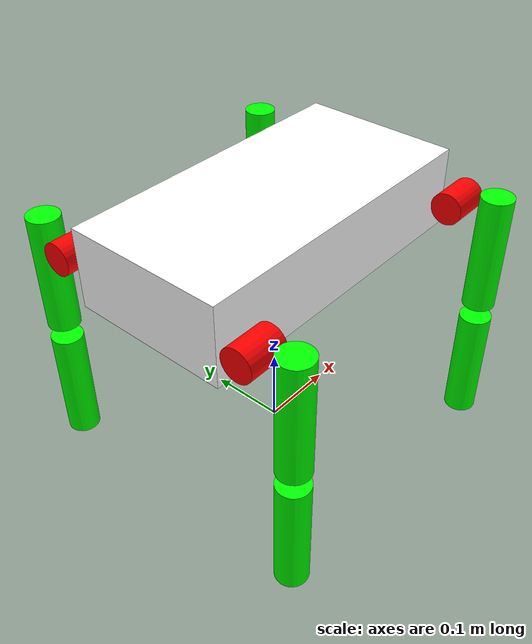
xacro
<?xml version="1.0" ?>
<robot name="quad_robot" xmlns:xacro="http://ros.org/wiki/xacro">

  <!-- Define materials -->
  <xacro:include filename="$(find quad_robot)/description/colors.xacro"/>

  <!-- Define properties -->
  <xacro:include filename="$(find quad_robot)/description/value.xacro"/>

  <!-- Body link -->
  <link name="body_link">
    <visual>
      <origin xyz="0 0 0.3" rpy="0 0 0"/>
      <geometry>
        <box size="${body_length} ${body_width} ${body_height}"/>
      </geometry>
      <xacro:insert_block name="black_material"/>
    </visual>
    <collision>
      <geometry>
        <box size="${body_length} ${body_width} ${body_height}"/>
      </geometry>
      <origin xyz="0 0 0.3" rpy="0 0 0"/>
    </collision>
    <inertial>
      <mass value="2"/>
      <inertia ixx="100" ixy="0" ixz="0" iyy="100" iyz="0" izz="100"/>
    </inertial>
  </link>

  <!-- Shoulder links -->
  <xacro:include filename="$(find quad_robot)/description/shoulder_link.xacro"/>

  <!-- Shoulder joints -->
  <xacro:include filename="$(find quad_robot)/description/shoulder_joint.xacro"/>

  <!-- Leg links -->
  <xacro:include filename="$(find quad_robot)/description/leg_link.xacro"/>

  <!-- Leg joints -->
  <xacro:include filename="$(find quad_robot)/description/leg_joint.xacro"/>

  <!-- Foot links -->
  <xacro:include filename="$(find quad_robot)/description/foot_link.xacro"/>

  <!-- Foot joints -->
  <xacro:include filename="$(find quad_robot)/description/foot_joint.xacro"/>

  <xacro:LF_shoulder_joint name="LF_shoulder_joint" parent="body_link" child="LF_shoulder_link"/>
  <xacro:RF_shoulder_joint name="RF_shoulder_joint" parent="body_link" child="RF_shoulder_link"/>
  <xacro:LR_shoulder_joint name="LR_shoulder_joint" parent="body_link" child="LR_shoulder_link"/>
  <xacro:RR_shoulder_joint name="RR_shoulder_joint" parent="body_link" child="RR_shoulder_link"/>

  <xacro:LF_leg_joint name="LF_leg_joint" parent="LF_shoulder_link" child="LF_leg_link"/>
  <xacro:RF_leg_joint name="RF_leg_joint" parent="RF_shoulder_link" child="RF_leg_link"/>
  <xacro:LR_leg_joint name="LR_leg_joint" parent="LR_shoulder_link" child="LR_leg_link"/>
  <xacro:RR_leg_joint name="RR_leg_joint" parent="RR_shoulder_link" child="RR_leg_link"/>

  <xacro:LF_foot_joint name="LF_foot_joint" parent="LF_leg_link" child="LF_foot_link"/>
  <xacro:RF_foot_joint name="RF_foot_joint" parent="RF_leg_link" child="RF_foot_link"/>
  <xacro:LR_foot_joint name="LR_foot_joint" parent="LR_leg_link" child="LR_foot_link"/>
  <xacro:RR_foot_joint name="RR_foot_joint" parent="RR_leg_link" child="RR_foot_link"/>

</robot>

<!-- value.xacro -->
<robot xmlns:xacro="http://www.ros.org/wiki/xacro">

  <xacro:property name="shoulder_radius" value="0.02"/>
  <xacro:property name="shoulder_length" value="0.05"/>
  <xacro:property name="leg_radius" value="0.02"/>
  <xacro:property name="leg_length" value="0.15"/>
  <xacro:property name="body_length" value="0.4"/>
  <xacro:property name="body_width" value="0.2"/>
  <xacro:property name="body_height" value="0.1"/>

</robot>

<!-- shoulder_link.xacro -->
<robot xmlns:xacro="http://www.ros.org/wiki/xacro">

  <link name="LF_shoulder_link">
    <visual>
      <origin xyz="0 0 0" rpy="0 0 0"/>
      <geometry>
        <cylinder radius="${shoulder_radius}" length="${shoulder_length}"/>
      </geometry>
      <xacro:insert_block name="red_material"/>
    </visual>
    <collision>
      <origin xyz="0 0 0" rpy="0 0 0"/>
      <geometry>
        <cylinder radius="${shoulder_radius}" length="${shoulder_length}"/>
      </geometry>
    </collision>
    <inertial>
      <mass value="0.1"/>
      <inertia ixx="100" ixy="0" ixz="0" iyx="0" iyy="100" iyz="0" izz="100"/>
    </inertial>
  </link>
  <link name="RF_shoulder_link">
    <visual>
      <origin xyz="0 0 0" rpy="0 0 0"/>
      <geometry>
        <cylinder radius="${shoulder_radius}" length="${shoulder_length}"/>
      </geometry>
      <xacro:insert_block name="red_material"/>
    </visual>
    <collision>
      <origin xyz="0 0 0" rpy="0 0 0"/>
      <geometry>
        <cylinder radius="${shoulder_radius}" length="${shoulder_length}"/>
      </geometry>
    </collision>
    <inertial>
      <mass value="0.1"/>
      <inertia ixx="100" ixy="0" ixz="0" iyx="0" iyy="100" iyz="0" izz="100"/>
    </inertial>
  </link>
  <link name="LR_shoulder_link">
    <visual>
      <origin xyz="0 0 0" rpy="0 0 0"/>
      <geometry>
        <cylinder radius="${shoulder_radius}" length="${shoulder_length}"/>
      </geometry>
      <xacro:insert_block name="red_material"/>
    </visual>
    <collision>
      <origin xyz="0 0 0" rpy="0 0 0"/>
      <geometry>
        <cylinder radius="${shoulder_radius}" length="${shoulder_length}"/>
      </geometry>
    </collision>
    <inertial>
      <mass value="0.1"/>
      <inertia ixx="100" ixy="0" ixz="0" iyx="0" iyy="100" iyz="0" izz="100"/>
    </inertial>
  </link>
  <link name="RR_shoulder_link">
    <visual>
      <origin xyz="0 0 0" rpy="0 0 0"/>
      <geometry>
        <cylinder radius="${shoulder_radius}" length="${shoulder_length}"/>
      </geometry>
      <xacro:insert_block name="red_material"/>
    </visual>
    <collision>
      <origin xyz="0 0 0" rpy="0 0 0"/>
      <geometry>
        <cylinder radius="${shoulder_radius}" length="${shoulder_length}"/>
      </geometry>
    </collision>
    <inertial>
      <mass value="0.1"/>
      <inertia ixx="100" ixy="0" ixz="0" iyx="0" iyy="100" iyz="0" izz="100"/>
    </inertial>
  </link>

</robot>

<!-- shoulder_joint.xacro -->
<robot xmlns:xacro="http://www.ros.org/wiki/xacro">

<xacro:property name="shoulder_joint_origin1" value="${body_length/2-0.02} ${body_width/2+0.03} 0.3"/>
  <xacro:property name="shoulder_joint_origin2" value="${body_length/2-0.02} -${body_width/2+0.03} 0.3"/>
  <xacro:property name="shoulder_joint_origin3" value="-${body_length/2-0.02} ${body_width/2+0.03} 0.3"/>
  <xacro:property name="shoulder_joint_origin4" value="-${body_length/2-0.02} -${body_width/2+0.03} 0.3"/>
  <xacro:property name="shoulder_joint_axis" value="0 0 1"/>

  <xacro:macro name="LF_shoulder_joint" params="name parent child">
    <joint name="${name}" type="revolute">
      <origin xyz="${shoulder_joint_origin1}" rpy="0 1.57 0"/>
      <parent link="${parent}"/>
      <child link="${child}"/>
      <axis xyz="${shoulder_joint_axis}"/>
      <limit lower="-1.5708" upper="1.5708" effort="30" velocity="1"/>
    </joint>
  </xacro:macro>

  <xacro:macro name="RF_shoulder_joint" params="name parent child">
    <joint name="${name}" type="revolute">
      <origin xyz="${shoulder_joint_origin2}" rpy="0 1.57 0"/>
      <parent link="${parent}"/>
      <child link="${child}"/>
      <axis xyz="${shoulder_joint_axis}"/>
      <limit lower="-1.5708" upper="1.5708" effort="30" velocity="1"/>
    </joint>
  </xacro:macro>

  <xacro:macro name="LR_shoulder_joint" params="name parent child">
    <joint name="${name}" type="revolute">
      <origin xyz="${shoulder_joint_origin3}" rpy="0 1.57 0"/>
      <parent link="${parent}"/>
      <child link="${child}"/>
      <axis xyz="${shoulder_joint_axis}"/>
      <limit lower="-1.5708" upper="1.5708" effort="30" velocity="1"/>
    </joint>
  </xacro:macro>

  <xacro:macro name="RR_shoulder_joint" params="name parent child">
    <joint name="${name}" type="revolute">
      <origin xyz="${shoulder_joint_origin4}" rpy="0 1.57 0"/>
      <parent link="${parent}"/>
      <child link="${child}"/>
      <axis xyz="${shoulder_joint_axis}"/>
      <limit lower="-1.5708" upper="1.5708" effort="30" velocity="1"/>
    </joint>
  </xacro:macro>

</robot>

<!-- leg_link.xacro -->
<robot xmlns:xacro="http://www.ros.org/wiki/xacro">

  <link name="LF_leg_link">
    <visual>
      <origin xyz="0.05 0 0" rpy="0 1.57 0"/>
      <geometry>
        <cylinder radius="${leg_radius}" length="${leg_length}"/>
      </geometry>
      <xacro:insert_block name="green_material"/>
    </visual>
    <collision>
      <origin xyz="0.05 0 0" rpy="0 1.57 0"/>
      <geometry>
        <cylinder radius="${leg_radius}" length="${leg_length}"/>
      </geometry>
    </collision>
    <inertial>
      <mass value="0.1"/>
      <inertia ixx="100" ixy="0" ixz="0" iyx="0" iyy="100" iyz="0" izz="100"/>
    </inertial>
  </link>
  <link name="RF_leg_link">
    <visual>
      <origin xyz="0.05 0 0" rpy="0 1.57 0"/>
      <geometry>
        <cylinder radius="${leg_radius}" length="${leg_length}"/>
      </geometry>
      <xacro:insert_block name="green_material"/>
    </visual>
    <collision>
      <origin xyz="0.05 0 0" rpy="0 1.57 0"/>
      <geometry>
        <cylinder radius="${leg_radius}" length="${leg_length}"/>
      </geometry>
    </collision>
    <inertial>
      <mass value="0.1"/>
      <inertia ixx="100" ixy="0" ixz="0" iyx="0" iyy="100" iyz="0" izz="100"/>
    </inertial>
  </link>
  <link name="LR_leg_link">
    <visual>
      <origin xyz="0.05 0 0" rpy="0 1.57 0"/>
      <geometry>
        <cylinder radius="${leg_radius}" length="${leg_length}"/>
      </geometry>
      <xacro:insert_block name="green_material"/>
    </visual>
    <collision>
      <origin xyz="0.05 0 0" rpy="0 1.57 0"/>
      <geometry>
        <cylinder radius="${leg_radius}" length="${leg_length}"/>
      </geometry>
    </collision>
    <inertial>
      <mass value="0.1"/>
      <inertia ixx="100" ixy="0" ixz="0" iyx="0" iyy="100" iyz="0" izz="100"/>
    </inertial>
  </link>
  <link name="RR_leg_link">
    <visual>
      <origin xyz="0.05 0 0" rpy="0 1.57 0"/>
      <geometry>
        <cylinder radius="${leg_radius}" length="${leg_length}"/>
      </geometry>
      <xacro:insert_block name="green_material"/>
    </visual>
    <collision>
      <origin xyz="0.05 0 0" rpy="0 1.57 0"/>
      <geometry>
        <cylinder radius="${leg_radius}" length="${leg_length}"/>
      </geometry>
    </collision>
    <inertial>
      <mass value="0.1"/>
      <inertia ixx="100" ixy="0" ixz="0" iyx="0" iyy="100" iyz="0" izz="100"/>
    </inertial>
  </link>

</robot>

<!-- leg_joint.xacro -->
<robot xmlns:xacro="http://www.ros.org/wiki/xacro">

  <xacro:property name="leg_joint_origin1" value="0 0.05 0"/>
  <xacro:property name="leg_joint_origin2" value="0 -0.05 0"/>
  <xacro:property name="leg_joint_origin3" value="0 0.05 0"/>
  <xacro:property name="leg_joint_origin4" value="0 -0.05 0"/>
  <xacro:property name="leg_joint_axis" value="0 0 1"/>

  <xacro:macro name="LF_leg_joint" params="name parent child">
    <joint name="${name}" type="revolute">
      <origin xyz="${leg_joint_origin1}" rpy="1.57 0 0"/>
      <parent link="${parent}"/>
      <child link="${child}"/>
      <axis xyz="${leg_joint_axis}"/>
      <limit lower="-1.5708" upper="1.5708" effort="30" velocity="1"/>
    </joint>
  </xacro:macro>

  <xacro:macro name="RF_leg_joint" params="name parent child">
    <joint name="${name}" type="revolute">
      <origin xyz="${leg_joint_origin2}" rpy="1.57 0 0"/>
      <parent link="${parent}"/>
      <child link="${child}"/>
      <axis xyz="${leg_joint_axis}"/>
      <limit lower="-1.5708" upper="1.5708" effort="30" velocity="1"/>
    </joint>
  </xacro:macro>

  <xacro:macro name="LR_leg_joint" params="name parent child">
    <joint name="${name}" type="revolute">
      <origin xyz="${leg_joint_origin3}" rpy="1.57 0 0"/>
      <parent link="${parent}"/>
      <child link="${child}"/>
      <axis xyz="${leg_joint_axis}"/>
      <limit lower="-1.5708" upper="1.5708" effort="30" velocity="1"/>
    </joint>
  </xacro:macro>

  <xacro:macro name="RR_leg_joint" params="name parent child">
    <joint name="${name}" type="revolute">
      <origin xyz="${leg_joint_origin4}" rpy="1.57 0 0"/>
      <parent link="${parent}"/>
      <child link="${child}"/>
      <axis xyz="${leg_joint_axis}"/>
      <limit lower="-1.5708" upper="1.5708" effort="30" velocity="1"/>
    </joint>
  </xacro:macro>

</robot>

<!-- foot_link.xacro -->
<robot xmlns:xacro="http://www.ros.org/wiki/xacro">

  <link name="LF_foot_link">
    <visual>
      <origin xyz="0.05 0 0" rpy="0 1.57 0"/>
      <geometry>
        <cylinder radius="${leg_radius}" length="${leg_length}"/>
      </geometry>
      <xacro:insert_block name="green_material"/>
    </visual>
    <collision>
      <origin xyz="0.05 0 0" rpy="0 1.57 0"/>
      <geometry>
        <cylinder radius="${leg_radius}" length="${leg_length}"/>
      </geometry>
    </collision>
    <inertial>
      <mass value="0.1"/>
      <inertia ixx="100" ixy="0" ixz="0" iyx="0" iyy="100" iyz="0" izz="100"/>
    </inertial>
  </link>
  <gazebo reference="LF_foot_link">
    <material>Gazebo/Green</material>
    <mu1 value="0.001"/>
    <mu2 value="0.001"/>
  </gazebo>
  <link name="RF_foot_link">
    <visual>
      <origin xyz="0.05 0 0" rpy="0 1.57 0"/>
      <geometry>
        <cylinder radius="${leg_radius}" length="${leg_length}"/>
      </geometry>
      <xacro:insert_block name="green_material"/>
    </visual>
    <collision>
      <origin xyz="0.05 0 0" rpy="0 1.57 0"/>
      <geometry>
        <cylinder radius="${leg_radius}" length="${leg_length}"/>
      </geometry>
    </collision>
    <inertial>
      <mass value="0.1"/>
      <inertia ixx="100" ixy="0" ixz="0" iyx="0" iyy="100" iyz="0" izz="100"/>
    </inertial>
  </link>
  <gazebo reference="RF_foot_link">
    <material>Gazebo/Green</material>
    <mu1 value="0.001"/>
    <mu2 value="0.001"/>
  </gazebo>
  <link name="LR_foot_link">
    <visual>
      <origin xyz="0.05 0 0" rpy="0 1.57 0"/>
      <geometry>
        <cylinder radius="${leg_radius}" length="${leg_length}"/>
      </geometry>
      <xacro:insert_block name="green_material"/>
    </visual>
    <collision>
      <origin xyz="0.05 0 0" rpy="0 1.57 0"/>
      <geometry>
        <cylinder radius="${leg_radius}" length="${leg_length}"/>
      </geometry>
    </collision>
    <inertial>
      <mass value="0.1"/>
      <inertia ixx="100" ixy="0" ixz="0" iyx="0" iyy="100" iyz="0" izz="100"/>
    </inertial>
  </link>
  <gazebo reference="LR_foot_link">
    <material>Gazebo/Green</material>
    <mu1 value="0.001"/>
    <mu2 value="0.001"/>
  </gazebo>
  <link name="RR_foot_link">
    <visual>
      <origin xyz="0.05 0 0" rpy="0 1.57 0"/>
      <geometry>
        <cylinder radius="${leg_radius}" length="${leg_length}"/>
      </geometry>
      <xacro:insert_block name="green_material"/>
    </visual>
    <collision>
      <origin xyz="0.05 0 0" rpy="0 1.57 0"/>
      <geometry>
        <cylinder radius="${leg_radius}" length="${leg_length}"/>
      </geometry>
    </collision>
    <inertial>
      <mass value="0.1"/>
      <inertia ixx="100" ixy="0" ixz="0" iyx="0" iyy="100" iyz="0" izz="100"/>
    </inertial>
  </link>
  <gazebo reference="RR_foot_link">
    <material>Gazebo/Green</material>
    <mu1 value="0.001"/>
    <mu2 value="0.001"/>
  </gazebo>

</robot>

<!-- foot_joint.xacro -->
<robot xmlns:xacro="http://www.ros.org/wiki/xacro">

  <xacro:property name="leg_foot_origin1" value="0.17 0 0"/>
  <xacro:property name="leg_foot_origin2" value="0.17 0 0"/>
  <xacro:property name="leg_foot_origin3" value="0.17 0 0"/>
  <xacro:property name="leg_foot_origin4" value="0.17 0 0"/>
  <xacro:property name="leg_foot_axis" value="0 0 1"/>

  <xacro:macro name="LF_foot_joint" params="name parent child">
    <joint name="${name}" type="revolute">
      <origin xyz="${leg_foot_origin1}" rpy="0 0 0"/>
      <parent link="${parent}"/>
      <child link="${child}"/>
      <axis xyz="${leg_foot_axis}"/>
      <limit lower="-1.5708" upper="1.5708" effort="30" velocity="1"/>
    </joint>
  </xacro:macro>

  <xacro:macro name="RF_foot_joint" params="name parent child">
    <joint name="${name}" type="revolute">
      <origin xyz="${leg_foot_origin2}" rpy="0 0 0"/>
      <parent link="${parent}"/>
      <child link="${child}"/>
      <axis xyz="${leg_foot_axis}"/>
      <limit lower="-1.5708" upper="1.5708" effort="30" velocity="1"/>
    </joint>
  </xacro:macro>

  <xacro:macro name="LR_foot_joint" params="name parent child">
    <joint name="${name}" type="revolute">
      <origin xyz="${leg_foot_origin3}" rpy="0 0 0"/>
      <parent link="${parent}"/>
      <child link="${child}"/>
      <axis xyz="${leg_foot_axis}"/>
      <limit lower="-1.5708" upper="1.5708" effort="30" velocity="1"/>
    </joint>
  </xacro:macro>

  <xacro:macro name="RR_foot_joint" params="name parent child">
    <joint name="${name}" type="revolute">
      <origin xyz="${leg_foot_origin4}" rpy="0 0 0"/>
      <parent link="${parent}"/>
      <child link="${child}"/>
      <axis xyz="${leg_foot_axis}"/>
      <limit lower="-1.5708" upper="1.5708" effort="30" velocity="1"/>
    </joint>
  </xacro:macro>

</robot>
